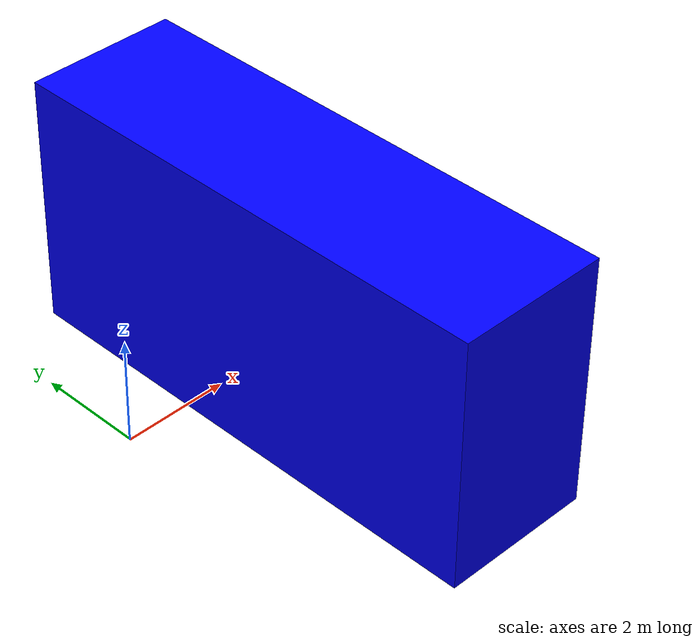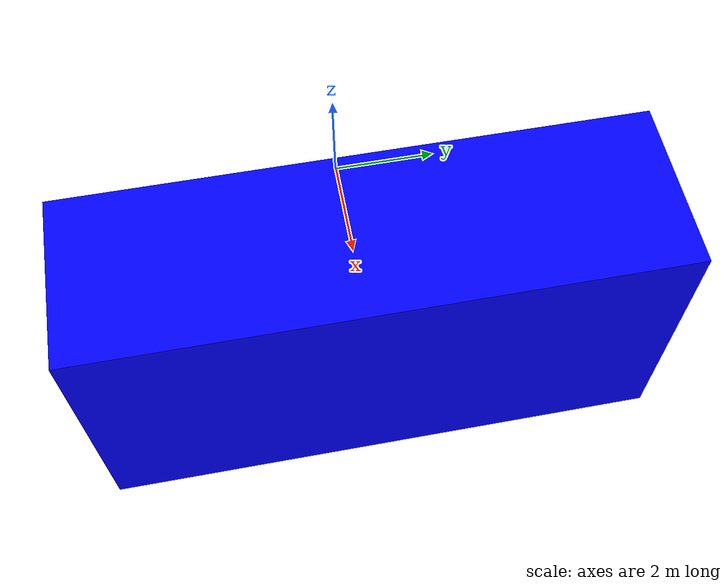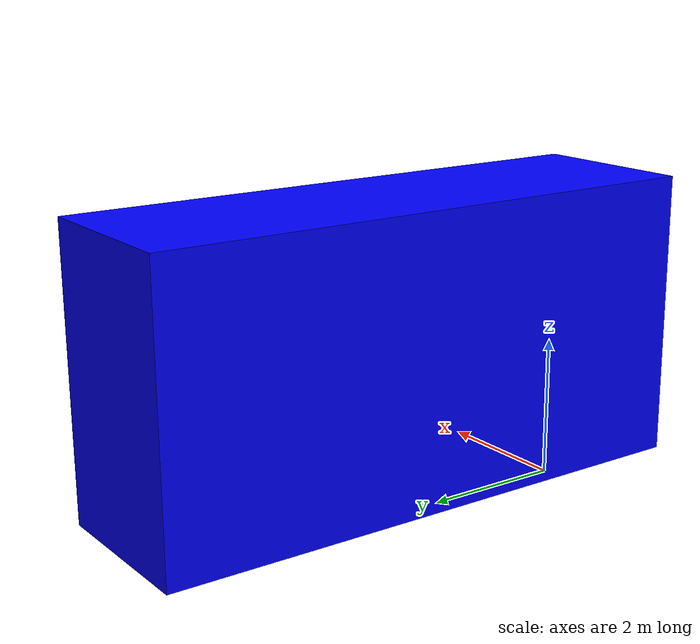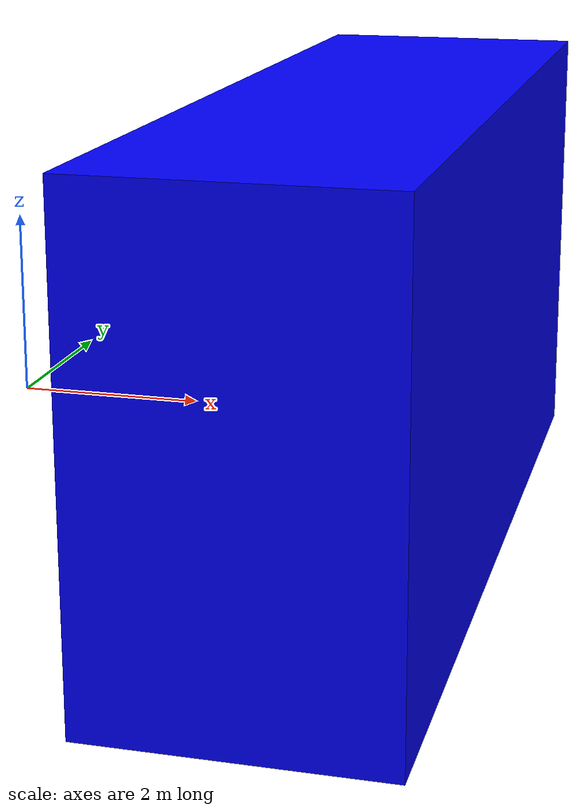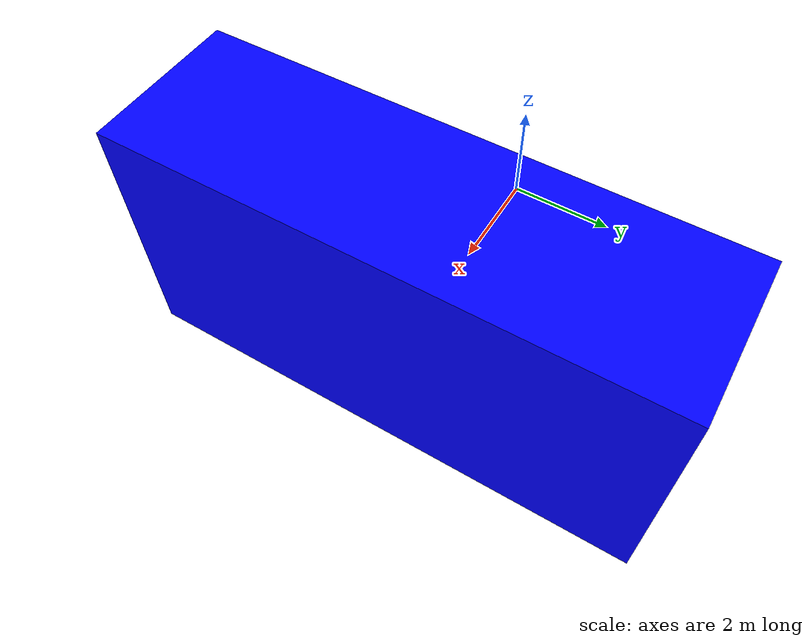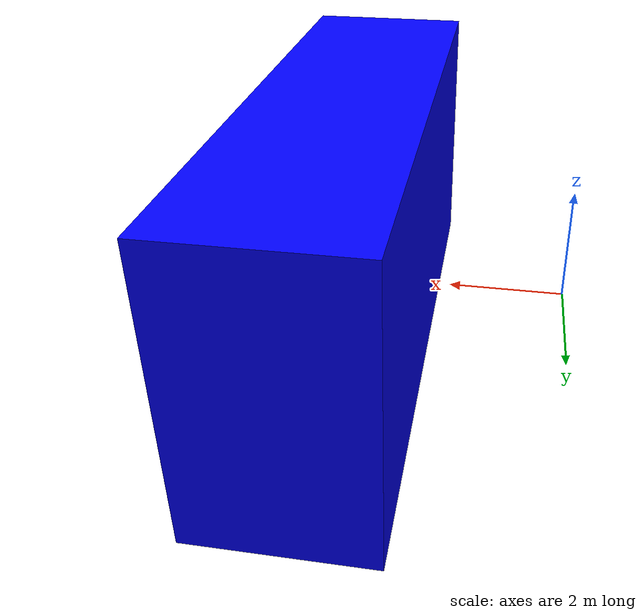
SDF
<?xml version="1.0" ?>
<sdf version='1.10'>
<model name='wall'>
      <static>true</static>
      <pose>3.9 0 1.0 0 0 0</pose><!--pose relative to the world: 3.9m à frente, altura 1m (metade da altura da parede de 2m)-->
      <link name='box'>
          <visual name='visual'>
              <geometry>
                  <box>
                      <size>3 10.0 5.0</size>
                  </box>
              </geometry>
              <!--let's add color to our link-->
              <material>
                  <ambient>0.0 0.0 1.0 1</ambient>
                  <diffuse>0.0 0.0 1.0 1</diffuse>
                  <specular>0.0 0.0 1.0 1</specular>
              </material>
          </visual>
          <collision name='collision'>
              <geometry>
                  <box>
                      <size>3 10.0 5.0</size>
                  </box>
              </geometry>
          </collision>
      </link>
  </model>
</sdf>
